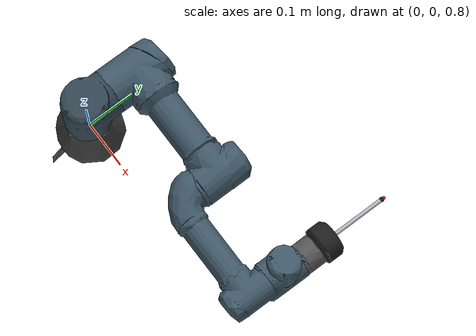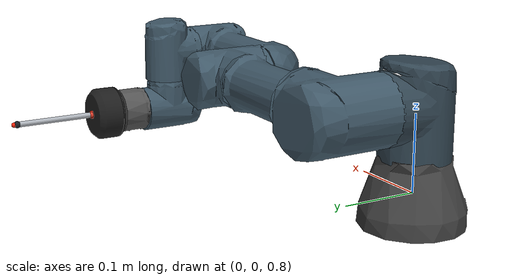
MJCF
<?xml version='1.0' encoding='utf-8'?>
<mujoco model="ur3_ft300_inspection">
  <!-- Dedicated UR3 + FT300 inspection model. Tool +Z points from the FT300 toward the inspection tip. -->
  <compiler angle="radian" autolimits="true" />
  <option timestep="0.001" integrator="implicitfast" gravity="0 0 -9.81" />
  <asset>
    <mesh name="base" content_type="model/stl" file="/home/ubuntu/ur3_ft300_ws/src/ur_description/meshes/ur3/collision/base.stl" />
    <mesh name="shoulder" content_type="model/stl" file="/home/ubuntu/ur3_ft300_ws/src/ur_description/meshes/ur3/collision/shoulder.stl" />
    <mesh name="upperarm" content_type="model/stl" file="/home/ubuntu/ur3_ft300_ws/src/ur_description/meshes/ur3/collision/upperarm.stl" />
    <mesh name="forearm" content_type="model/stl" file="/home/ubuntu/ur3_ft300_ws/src/ur_description/meshes/ur3/collision/forearm.stl" />
    <mesh name="wrist1" content_type="model/stl" file="/home/ubuntu/ur3_ft300_ws/src/ur_description/meshes/ur3/collision/wrist1.stl" />
    <mesh name="wrist2" content_type="model/stl" file="/home/ubuntu/ur3_ft300_ws/src/ur_description/meshes/ur3/collision/wrist2.stl" />
    <mesh name="wrist3" content_type="model/stl" file="/home/ubuntu/ur3_ft300_ws/src/ur_description/meshes/ur3/collision/wrist3.stl" />
    <mesh name="robotiq_ft300" content_type="model/stl" file="/home/ubuntu/ur3_ft300_ws/install/robotiq_ft_sensor_description/share/robotiq_ft_sensor_description/meshes/collision/robotiq_ft300.STL" />
    <mesh name="robotiq_ft300-G-062-COUPLING_G-50-4M6-1D6_20181119" content_type="model/stl" file="/home/ubuntu/ur3_ft300_ws/install/robotiq_ft_sensor_description/share/robotiq_ft_sensor_description/meshes/collision/mountings/robotiq_ft300-G-062-COUPLING_G-50-4M6-1D6_20181119.STL" />
    <material name="ur_base_gray" rgba="0.2688 0.2688 0.2688 1" specular="0.25" shininess="0.35" />
    <material name="ur_shoulder_blue" rgba="0.200704 0.278016 0.32768 1" specular="0.25" shininess="0.35" />
    <material name="ur_blue" rgba="0.25088 0.34752 0.4096 1" specular="0.3" shininess="0.4" />
    <material name="ur_metal_gray" rgba="0.335872 0.335872 0.335872 1" specular="0.35" shininess="0.45" />
    <material name="inspection_probe_metal" rgba="0.70 0.72 0.75 1" specular="0.55" shininess="0.65" />
    <material name="inspection_tip_dark" rgba="0.10 0.12 0.14 1" specular="0.35" shininess="0.45" />
  </asset>
  <worldbody>
    <body name="base_link" pos="0 0 0.76">
      <body name="base_link_inertia" quat="0 0 0 1">
        <inertial pos="0 0 0" quat="0.5 0.5 -0.5 0.5" mass="2" diaginertia="0.005625 0.00305317 0.00305317" />
        <geom quat="0 0 0 1" type="mesh" mesh="base" friction="0.8 0.01 0.001" material="ur_base_gray" />
        <body name="shoulder_link" pos="0 0 0.1519">
          <inertial pos="0 0 -0.02" mass="2" diaginertia="0.00809317 0.00809317 0.005625" />
          <joint name="shoulder_pan_joint" range="-6.28319 6.28319" actuatorfrcrange="-56 56" damping="0.15" armature="0.01" />
          <geom quat="0 0 0 1" type="mesh" mesh="shoulder" friction="0.8 0.01 0.001" material="ur_shoulder_blue" />
          <body name="upper_arm_link" quat="0.707107 0.707107 0 0">
            <inertial pos="-0.11365 0 0.1157" mass="3.42" diaginertia="0.0217285 0.0217285 0.00961875" />
            <joint name="shoulder_lift_joint" range="-6.28319 6.28319" actuatorfrcrange="-56 56" damping="0.15" armature="0.01" />
            <geom pos="0 0 0.1198" quat="0.5 0.5 -0.5 -0.5" type="mesh" mesh="upperarm" friction="0.8 0.01 0.001" material="ur_blue" />
            <body name="forearm_link" pos="-0.24365 0 0">
              <inertial pos="-0.16325 0 0.0238" mass="1.26" diaginertia="0.00654681 0.00654681 0.00354375" />
              <joint name="elbow_joint" range="-3.14159 3.14159" actuatorfrcrange="-28 28" damping="0.15" armature="0.01" />
              <geom pos="0 0 0.0275" quat="0.5 0.5 -0.5 -0.5" type="mesh" mesh="forearm" friction="0.8 0.01 0.001" material="ur_blue" />
              <body name="wrist_1_link" pos="-0.21325 0 0.11235">
                <inertial pos="0 -0.01 0" quat="0.5 0.5 -0.5 0.5" mass="0.8" diaginertia="0.00225 0.00161064 0.00161064" />
                <joint name="wrist_1_joint" range="-6.28319 6.28319" actuatorfrcrange="-12 12" damping="0.08" armature="0.001" />
                <geom pos="0 0 -0.085" quat="0.707107 0.707107 0 0" type="mesh" mesh="wrist1" friction="0.8 0.01 0.001" material="ur_blue" />
                <body name="wrist_2_link" pos="0 -0.08535 -1.75056e-11" quat="0.707107 0.707107 0 0">
                  <inertial pos="0 0.01 0" quat="0.5 0.5 -0.5 0.5" mass="0.8" diaginertia="0.00225 0.00157217 0.00157217" />
                  <joint name="wrist_2_joint" range="-6.28319 6.28319" actuatorfrcrange="-12 12" damping="0.08" armature="0.001" />
                  <geom pos="0 0 -0.083" quat="1 0 0 0" type="mesh" mesh="wrist2" friction="0.8 0.01 0.001" material="ur_blue" />
                  <body name="wrist_3_link" pos="0 0.0819 -1.6798e-11" quat="0.707107 -0.707107 0 0">
                    <inertial pos="0 0 -0.02" quat="0.5 0.5 -0.5 0.5" mass="0.35" diaginertia="0.0001792 0.000136267 0.000136267" />
                    <joint name="wrist_3_joint" actuatorfrcrange="-12 12" damping="0.08" armature="0.001" />
                    <geom pos="0 -0.002 -0.082" quat="0.707107 0.707107 0 0" type="mesh" mesh="wrist3" friction="0.8 0.01 0.001" material="ur_metal_gray" />
                    <body name="ft_frame" quat="0 1 0 0" />
                    <body name="flange" quat="0.5 -0.5 -0.5 -0.5">
                      <body name="tool0" quat="0.5 0.5 0.5 0.5">
                        <body name="ft300_mounting_plate">
                          <geom type="mesh" rgba="0.12 0.12 0.12 1" mesh="robotiq_ft300-G-062-COUPLING_G-50-4M6-1D6_20181119" friction="0.8 0.01 0.001" />
                          <body name="ft300_sensor" pos="0 0 0.0415" quat="0 0 1 0">
                            <inertial pos="0 0 -0.017" quat="0.709662 -0.000475378 -0.0158879 0.704363" mass="0.3" diaginertia="0.000265022 0.000262023 0.000218955" />
                            <geom type="mesh" rgba="0.12 0.12 0.12 1" mesh="robotiq_ft300" friction="0.8 0.01 0.001" />
                            <body name="robotiq_ft_frame_id" quat="0 0.707107 0.707107 0">
                              <site name="ft300_site" pos="0 0 0" size="0.006" rgba="1 0.2 0.1 0.8" />
                              <body name="inspection_probe">
                                <inertial pos="0 0 0.067083333333333342" mass="0.12" diaginertia="0.0001659125 0.0001659125 9.9999999999999995e-07" />
                                <geom name="inspection_probe_shaft" type="cylinder" size="0.0040000000000000001 0.057499999999999996" pos="0 0 0.057499999999999996" material="inspection_probe_metal" contype="0" conaffinity="0" />
                                <geom name="inspection_probe_tip_collision" type="sphere" size="0.0050000000000000001" pos="0 0 0.11499999999999999" material="inspection_tip_dark" friction="0.45 0.01 0.001" solref="-2500 -35" />
                                <body name="inspection_tip" pos="0 0 0.12">
                                  <site name="inspection_tip_site" pos="0 0 0" size="0.0035" rgba="1 0.15 0.05 0.9" />
                                </body>
                              </body>
                            </body>
                          </body>
                        </body>
                      </body>
                    </body>
                  </body>
                </body>
              </body>
            </body>
          </body>
        </body>
      </body>
      <body name="base" quat="0 0 0 1" />
    </body>
  </worldbody>
  <visual>
    <headlight ambient="0.35 0.35 0.35" diffuse="0.7 0.7 0.7" />
    <rgba haze="0.15 0.25 0.35 1" />
  </visual>
  <contact>
    <exclude body1="base_link_inertia" body2="shoulder_link" />
  </contact>
  <actuator>
    <motor name="shoulder_pan_motor" joint="shoulder_pan_joint" gear="1" ctrllimited="true" ctrlrange="-56 56" />
    <motor name="shoulder_lift_motor" joint="shoulder_lift_joint" gear="1" ctrllimited="true" ctrlrange="-56 56" />
    <motor name="elbow_motor" joint="elbow_joint" gear="1" ctrllimited="true" ctrlrange="-28 28" />
    <motor name="wrist1_motor" joint="wrist_1_joint" gear="1" ctrllimited="true" ctrlrange="-12 12" />
    <motor name="wrist2_motor" joint="wrist_2_joint" gear="1" ctrllimited="true" ctrlrange="-12 12" />
    <motor name="wrist3_motor" joint="wrist_3_joint" gear="1" ctrllimited="true" ctrlrange="-12 12" />
  </actuator>
  <sensor>
    <force name="ft300_force" site="ft300_site" />
    <torque name="ft300_torque" site="ft300_site" />
  </sensor>
  <keyframe>
    <key name="home" qpos="-1.254 -1.5707 1.5707 -1.5707 -1.5707 0" ctrl="0 0 0 0 0 0" />
  </keyframe>
</mujoco>
